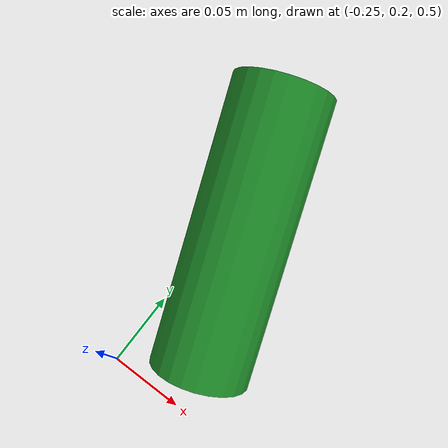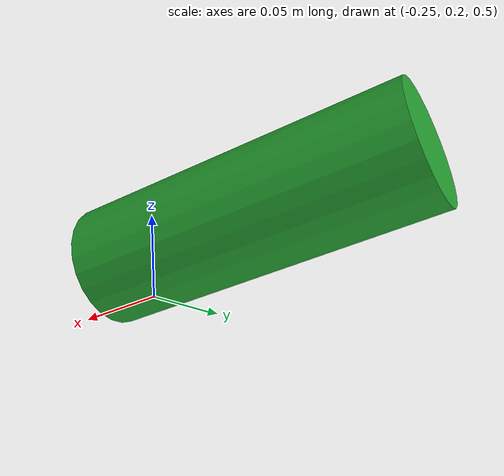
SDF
<sdf version="1.5">
  <model name="stickbot_weight_right">
    <pose>-0.22 0.3 0.57 0.268361 -1.139415 -1.563954</pose>
    <static>false</static>
    <link name="cylinder">
        <visual name="visual">
            <geometry>
                <cylinder>
                    <radius>0.03</radius>
                    <length>0.17</length>
                </cylinder>
            </geometry>
            <material>
                <script>
                    <uri>file://media/materials/scripts/gazebo.material</uri>
                    <name>Gazebo/Green</name>
                </script>
        </material>
        </visual>
        <inertial>
            <mass>7</mass>
        </inertial>
    </link>
    <plugin name="link_attacher" filename='libgazebo_yarp_linkattacher.so'>
        <yarpConfigurationFile>model://iCub/conf_stickBot/link_attacher/linkattacher_weight_right.ini</yarpConfigurationFile>
    </plugin>
  </model>
</sdf>
